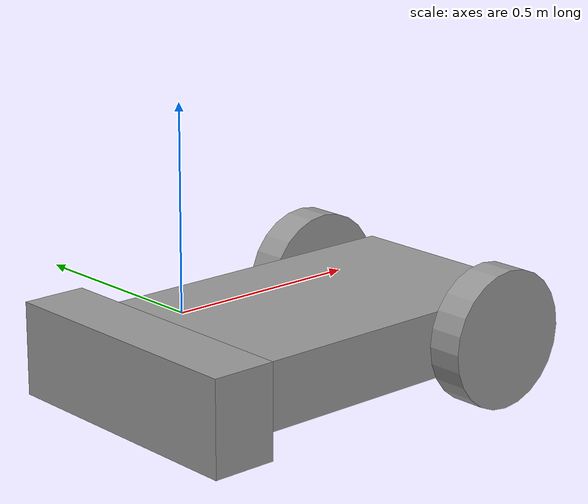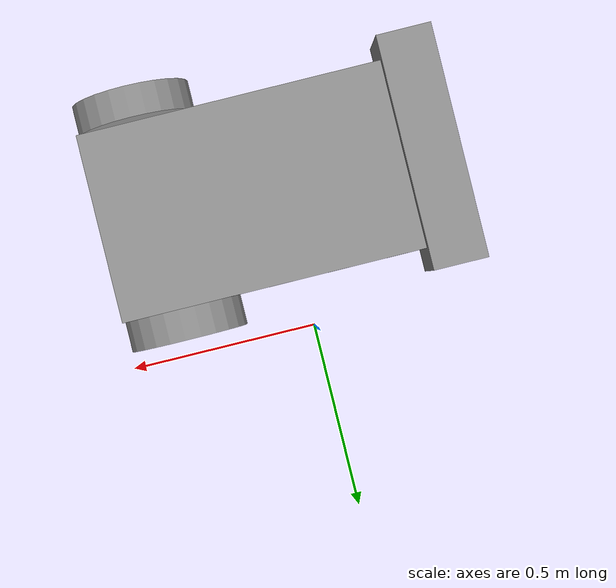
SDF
<?xml version='1.0'?>
<sdf version='1.7'>
  <model name='robot'>
    <link name='link_0'>
      <inertial>
        <mass>0.0632012</mass>
        <inertia>
          <ixx>0.00146993</ixx>
          <ixy>0</ixy>
          <ixz>0</ixz>
          <iyy>0.0037015</iyy>
          <iyz>0</iyz>
          <izz>0.00493017</izz>
        </inertia>
        <pose>0 0 0 0 -0 0</pose>
      </inertial>
      <pose>0.076898 -0.380268 0.043134 0 -0 0</pose>
      <visual name='visual'>
        <pose>0 0 0 0 -0 0</pose>
        <geometry>
          <box>
            <size>0.82456 0.506153 0.151341</size>
          </box>
        </geometry>
        <material>
          <lighting>1</lighting>
          <script>
            <uri>file://media/materials/scripts/gazebo.material</uri>
            <name>Gazebo/Grey</name>
          </script>
          <shader type='pixel'/>
          <emissive>0 0 0 1</emissive>
        </material>
        <transparency>0</transparency>
        <cast_shadows>1</cast_shadows>
      </visual>
      <collision name='collision'>
        <laser_retro>0</laser_retro>
        <max_contacts>10</max_contacts>
        <pose>0 0 0 0 -0 0</pose>
        <geometry>
          <box>
            <size>0.82456 0.506153 0.151341</size>
          </box>
        </geometry>
        <surface>
          <friction>
            <ode>
              <mu>1</mu>
              <mu2>1</mu2>
              <fdir1>0 0 0</fdir1>
              <slip1>0</slip1>
              <slip2>0</slip2>
            </ode>
            <torsional>
              <coefficient>1</coefficient>
              <patch_radius>0</patch_radius>
              <surface_radius>0</surface_radius>
              <use_patch_radius>1</use_patch_radius>
              <ode>
                <slip>0</slip>
              </ode>
            </torsional>
          </friction>
          <bounce>
            <restitution_coefficient>0</restitution_coefficient>
            <threshold>1e+06</threshold>
          </bounce>
          <contact>
            <collide_without_contact>0</collide_without_contact>
            <collide_without_contact_bitmask>1</collide_without_contact_bitmask>
            <collide_bitmask>1</collide_bitmask>
            <ode>
              <soft_cfm>0</soft_cfm>
              <soft_erp>0.2</soft_erp>
              <kp>1e+13</kp>
              <kd>1</kd>
              <max_vel>0.01</max_vel>
              <min_depth>0</min_depth>
            </ode>
            <bullet>
              <split_impulse>1</split_impulse>
              <split_impulse_penetration_threshold>-0.01</split_impulse_penetration_threshold>
              <soft_cfm>0</soft_cfm>
              <soft_erp>0.2</soft_erp>
              <kp>1e+13</kp>
              <kd>1</kd>
            </bullet>
          </contact>
        </surface>
      </collision>
    </link>
    <link name='link_1'>
      <inertial>
        <mass>0.00808714</mass>
        <inertia>
          <ixx>5.47359e-05</ixx>
          <ixy>0</ixy>
          <ixz>0</ixz>
          <iyy>5.47359e-05</iyy>
          <iyz>0</iyz>
          <izz>0.000100559</izz>
        </inertia>
        <pose>0 0 0 0 -0 0</pose>
      </inertial>
      <pose>0.331479 -0.086517 0.043134 0 -0 0</pose>
      <gravity>1</gravity>
      <self_collide>0</self_collide>
      <kinematic>0</kinematic>
      <enable_wind>0</enable_wind>
      <visual name='visual'>
        <pose>0 0 0 1.5707 -0 0</pose>
        <geometry>
          <cylinder>
            <radius>0.157698</radius>
            <length>0.0813189</length>
          </cylinder>
        </geometry>
        <material>
          <lighting>1</lighting>
          <script>
            <uri>file://media/materials/scripts/gazebo.material</uri>
            <name>Gazebo/Grey</name>
          </script>
          <shader type='pixel'>
            <normal_map>__default__</normal_map>
          </shader>
          <ambient>0.3 0.3 0.3 1</ambient>
          <diffuse>0.7 0.7 0.7 1</diffuse>
          <specular>0.01 0.01 0.01 1</specular>
          <emissive>0 0 0 1</emissive>
        </material>
        <transparency>0</transparency>
        <cast_shadows>1</cast_shadows>
      </visual>
      <collision name='collision'>
        <laser_retro>0</laser_retro>
        <max_contacts>10</max_contacts>
        <pose>0 0 0 1.5707 -0 0</pose>
        <geometry>
          <cylinder>
            <radius>0.157698</radius>
            <length>0.081319</length>
          </cylinder>
        </geometry>
        <surface>
          <friction>
            <ode>
              <mu>1</mu>
              <mu2>1</mu2>
              <fdir1>0 0 0</fdir1>
              <slip1>0</slip1>
              <slip2>0</slip2>
            </ode>
            <torsional>
              <coefficient>1</coefficient>
              <patch_radius>0</patch_radius>
              <surface_radius>0</surface_radius>
              <use_patch_radius>1</use_patch_radius>
              <ode>
                <slip>0</slip>
              </ode>
            </torsional>
          </friction>
          <bounce>
            <restitution_coefficient>0</restitution_coefficient>
            <threshold>1e+06</threshold>
          </bounce>
          <contact>
            <collide_without_contact>0</collide_without_contact>
            <collide_without_contact_bitmask>1</collide_without_contact_bitmask>
            <collide_bitmask>1</collide_bitmask>
            <ode>
              <soft_cfm>0</soft_cfm>
              <soft_erp>0.2</soft_erp>
              <kp>1e+13</kp>
              <kd>1</kd>
              <max_vel>0.01</max_vel>
              <min_depth>0</min_depth>
            </ode>
            <bullet>
              <split_impulse>1</split_impulse>
              <split_impulse_penetration_threshold>-0.01</split_impulse_penetration_threshold>
              <soft_cfm>0</soft_cfm>
              <soft_erp>0.2</soft_erp>
              <kp>1e+13</kp>
              <kd>1</kd>
            </bullet>
          </contact>
        </surface>
      </collision>
    </link>
    <link name='link_1_clone'>
      <inertial>
        <mass>0.00808714</mass>
        <inertia>
          <ixx>5.47359e-05</ixx>
          <ixy>0</ixy>
          <ixz>0</ixz>
          <iyy>5.47359e-05</iyy>
          <iyz>0</iyz>
          <izz>0.000100559</izz>
        </inertia>
        <pose>0 0 0 0 -0 0</pose>
      </inertial>
      <pose>0.33148 -0.67402 0.043134 0 -0 0</pose>
      <gravity>1</gravity>
      <self_collide>0</self_collide>
      <kinematic>0</kinematic>
      <enable_wind>0</enable_wind>
      <visual name='visual'>
        <pose>0 0 0 1.5707 -0 0</pose>
        <geometry>
          <cylinder>
            <radius>0.157698</radius>
            <length>0.0813189</length>
          </cylinder>
        </geometry>
        <material>
          <lighting>1</lighting>
          <script>
            <uri>file://media/materials/scripts/gazebo.material</uri>
            <name>Gazebo/Grey</name>
          </script>
          <shader type='pixel'>
            <normal_map>__default__</normal_map>
          </shader>
          <ambient>0.3 0.3 0.3 1</ambient>
          <diffuse>0.7 0.7 0.7 1</diffuse>
          <specular>0.01 0.01 0.01 1</specular>
          <emissive>0 0 0 1</emissive>
        </material>
        <transparency>0</transparency>
        <cast_shadows>1</cast_shadows>
      </visual>
      <collision name='collision'>
        <laser_retro>0</laser_retro>
        <max_contacts>10</max_contacts>
        <pose>0 0 0 1.5707 -0 0</pose>
        <geometry>
          <cylinder>
            <radius>0.157698</radius>
            <length>0.081319</length>
          </cylinder>
        </geometry>
        <surface>
          <friction>
            <ode>
              <mu>1</mu>
              <mu2>1</mu2>
              <fdir1>0 0 0</fdir1>
              <slip1>0</slip1>
              <slip2>0</slip2>
            </ode>
            <torsional>
              <coefficient>1</coefficient>
              <patch_radius>0</patch_radius>
              <surface_radius>0</surface_radius>
              <use_patch_radius>1</use_patch_radius>
              <ode>
                <slip>0</slip>
              </ode>
            </torsional>
          </friction>
          <bounce>
            <restitution_coefficient>0</restitution_coefficient>
            <threshold>1e+06</threshold>
          </bounce>
          <contact>
            <collide_without_contact>0</collide_without_contact>
            <collide_without_contact_bitmask>1</collide_without_contact_bitmask>
            <collide_bitmask>1</collide_bitmask>
            <ode>
              <soft_cfm>0</soft_cfm>
              <soft_erp>0.2</soft_erp>
              <kp>1e+13</kp>
              <kd>1</kd>
              <max_vel>0.01</max_vel>
              <min_depth>0</min_depth>
            </ode>
            <bullet>
              <split_impulse>1</split_impulse>
              <split_impulse_penetration_threshold>-0.01</split_impulse_penetration_threshold>
              <soft_cfm>0</soft_cfm>
              <soft_erp>0.2</soft_erp>
              <kp>1e+13</kp>
              <kd>1</kd>
            </bullet>
          </contact>
        </surface>
      </collision>
    </link>
    <link name='link_2'>
      <inertial>
        <mass>0.0028514</mass>
        <inertia>
          <ixx>5.73493e-06</ixx>
          <ixy>0</ixy>
          <ixz>0</ixz>
          <iyy>5.73493e-06</iyy>
          <iyz>0</iyz>
          <izz>5.73493e-06</izz>
        </inertia>
        <pose>0 0 0 0 -0 0</pose>
      </inertial>
      <pose>-0.264473 -0.414813 -0.062536 0 -0 0</pose>
      <visual name='visual'>
        <pose>0 0 0 0 -0 0</pose>
        <geometry>
          <sphere>
            <radius>0.0709096</radius>
          </sphere>
        </geometry>
        <material>
          <lighting>1</lighting>
          <script>
            <uri>file://media/materials/scripts/gazebo.material</uri>
            <name>Gazebo/Grey</name>
          </script>
          <shader type='pixel'/>
          <emissive>0 0 0 1</emissive>
        </material>
        <transparency>0</transparency>
        <cast_shadows>1</cast_shadows>
      </visual>
      <collision name='collision'>
        <laser_retro>0</laser_retro>
        <max_contacts>10</max_contacts>
        <pose>0 0 0 0 -0 0</pose>
        <geometry>
          <sphere>
            <radius>0.07091</radius>
          </sphere>
        </geometry>
        <surface>
          <friction>
            <ode>
              <mu>1</mu>
              <mu2>1</mu2>
              <fdir1>0 0 0</fdir1>
              <slip1>0</slip1>
              <slip2>0</slip2>
            </ode>
            <torsional>
              <coefficient>1</coefficient>
              <patch_radius>0</patch_radius>
              <surface_radius>0</surface_radius>
              <use_patch_radius>1</use_patch_radius>
              <ode>
                <slip>0</slip>
              </ode>
            </torsional>
          </friction>
          <bounce>
            <restitution_coefficient>0</restitution_coefficient>
            <threshold>1e+06</threshold>
          </bounce>
          <contact>
            <collide_without_contact>0</collide_without_contact>
            <collide_without_contact_bitmask>1</collide_without_contact_bitmask>
            <collide_bitmask>1</collide_bitmask>
            <ode>
              <soft_cfm>0</soft_cfm>
              <soft_erp>0.2</soft_erp>
              <kp>1e+13</kp>
              <kd>1</kd>
              <max_vel>0.01</max_vel>
              <min_depth>0</min_depth>
            </ode>
            <bullet>
              <split_impulse>1</split_impulse>
              <split_impulse_penetration_threshold>-0.01</split_impulse_penetration_threshold>
              <soft_cfm>0</soft_cfm>
              <soft_erp>0.2</soft_erp>
              <kp>1e+13</kp>
              <kd>1</kd>
            </bullet>
          </contact>
        </surface>
      </collision>
    </link>
    <link name='link_3'>
      <inertial>
        <mass>0.0194487</mass>
        <inertia>
          <ixx>0.000711835</ixx>
          <ixy>0</ixy>
          <ixz>0</ixz>
          <iyy>0.000106769</iyy>
          <iyz>0</iyz>
          <izz>0.000675447</izz>
        </inertia>
        <pose>0 0 0 0 -0 0</pose>
      </inertial>
      <pose>-0.405382 -0.380268 0.043134 0 -0 0</pose>
      <visual name='visual'>
        <pose>0 0 0 0 -0 0</pose>
        <geometry>
          <box>
            <size>0.147353 0.628525 0.210154</size>
          </box>
        </geometry>
        <material>
          <lighting>1</lighting>
          <script>
            <uri>file://media/materials/scripts/gazebo.material</uri>
            <name>Gazebo/Grey</name>
          </script>
          <shader type='pixel'/>
          <emissive>0 0 0 1</emissive>
        </material>
        <transparency>0</transparency>
        <cast_shadows>1</cast_shadows>
      </visual>
      <collision name='collision'>
        <laser_retro>0</laser_retro>
        <max_contacts>10</max_contacts>
        <pose>0 0 0 0 -0 0</pose>
        <geometry>
          <box>
            <size>0.147353 0.628525 0.210154</size>
          </box>
        </geometry>
        <surface>
          <friction>
            <ode>
              <mu>1</mu>
              <mu2>1</mu2>
              <fdir1>0 0 0</fdir1>
              <slip1>0</slip1>
              <slip2>0</slip2>
            </ode>
            <torsional>
              <coefficient>1</coefficient>
              <patch_radius>0</patch_radius>
              <surface_radius>0</surface_radius>
              <use_patch_radius>1</use_patch_radius>
              <ode>
                <slip>0</slip>
              </ode>
            </torsional>
          </friction>
          <bounce>
            <restitution_coefficient>0</restitution_coefficient>
            <threshold>1e+06</threshold>
          </bounce>
          <contact>
            <collide_without_contact>0</collide_without_contact>
            <collide_without_contact_bitmask>1</collide_without_contact_bitmask>
            <collide_bitmask>1</collide_bitmask>
            <ode>
              <soft_cfm>0</soft_cfm>
              <soft_erp>0.2</soft_erp>
              <kp>1e+13</kp>
              <kd>1</kd>
              <max_vel>0.01</max_vel>
              <min_depth>0</min_depth>
            </ode>
            <bullet>
              <split_impulse>1</split_impulse>
              <split_impulse_penetration_threshold>-0.01</split_impulse_penetration_threshold>
              <soft_cfm>0</soft_cfm>
              <soft_erp>0.2</soft_erp>
              <kp>1e+13</kp>
              <kd>1</kd>
            </bullet>
          </contact>
        </surface>
      </collision>
    </link>
    <joint name='link_0_JOINT_1' type='revolute'>
      <parent>link_0</parent>
      <child>link_1</child>
      <pose>0 0 0 0 -0 0</pose>
      <axis>
        <xyz>-0 -1 -0</xyz>
        <limit>
          <lower>-1.79769e+308</lower>
          <upper>1.79769e+308</upper>
          <effort>-1</effort>
          <velocity>-1</velocity>
        </limit>
        <dynamics>
          <spring_reference>0</spring_reference>
          <spring_stiffness>0</spring_stiffness>
          <damping>0</damping>
        </dynamics>
      </axis>
      <physics>
        <ode>
          <limit>
            <cfm>0</cfm>
            <erp>0.2</erp>
          </limit>
          <suspension>
            <cfm>0</cfm>
            <erp>0.2</erp>
          </suspension>
        </ode>
      </physics>
    </joint>
    <joint name='link_0_JOINT_2' type='revolute'>
      <parent>link_0</parent>
      <child>link_1_clone</child>
      <pose>0 0 0 0 -0 0</pose>
      <axis>
        <xyz>0 1 0</xyz>
        <limit>
          <lower>-1.79769e+308</lower>
          <upper>1.79769e+308</upper>
          <effort>-1</effort>
          <velocity>-1</velocity>
        </limit>
        <dynamics>
          <spring_reference>0</spring_reference>
          <spring_stiffness>0</spring_stiffness>
          <damping>0</damping>
        </dynamics>
      </axis>
      <physics>
        <ode>
          <limit>
            <cfm>0</cfm>
            <erp>0.2</erp>
          </limit>
          <suspension>
            <cfm>0</cfm>
            <erp>0.2</erp>
          </suspension>
        </ode>
      </physics>
    </joint>
    <joint name='link_0_JOINT_4' type='ball'>
      <parent>link_0</parent>
      <child>link_2</child>
      <pose>0 0 0 0 -0 0</pose>
      <physics>
        <ode>
          <limit>
            <cfm>0</cfm>
            <erp>0.2</erp>
          </limit>
          <suspension>
            <cfm>0</cfm>
            <erp>0.2</erp>
          </suspension>
        </ode>
      </physics>
    </joint>
    <joint name='link_0_JOINT_5' type='fixed'>
      <parent>link_0</parent>
      <child>link_3</child>
      <pose>0 0 0 0 -0 0</pose>
      <physics>
        <ode>
          <limit>
            <cfm>0</cfm>
            <erp>0.2</erp>
          </limit>
          <suspension>
            <cfm>0</cfm>
            <erp>0.2</erp>
          </suspension>
        </ode>
      </physics>
    </joint>
    <static>0</static>
    <allow_auto_disable>1</allow_auto_disable>
  </model>
</sdf>
